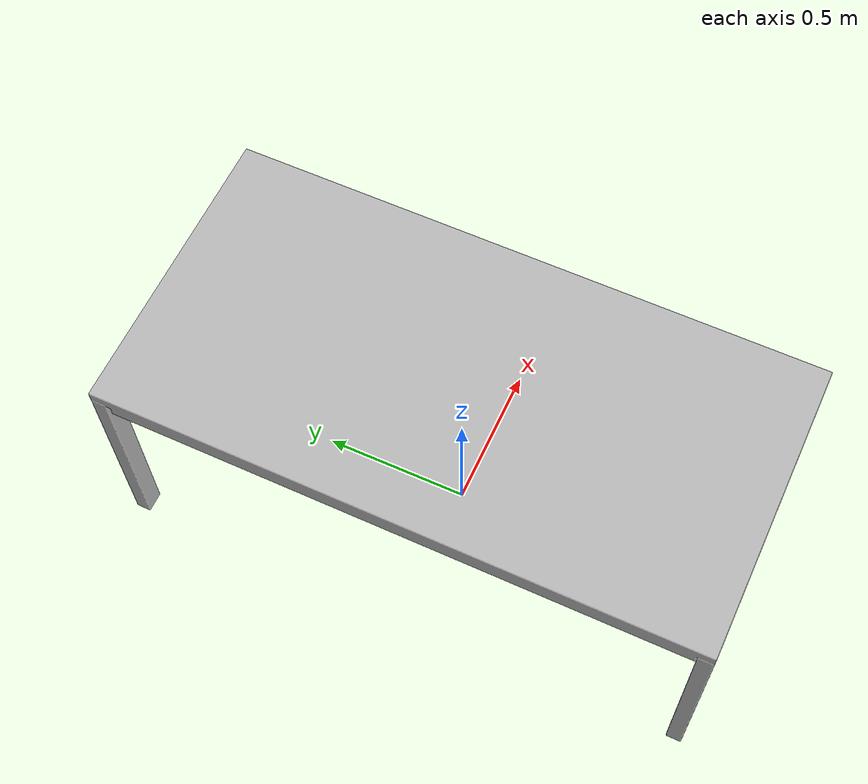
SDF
<?xml version="1.0" ?>
<sdf version="1.6">
  <model name="gcs_table">
    <static>true</static>
    <link name="base_link">
      <collision name="base_collision">
        <geometry>
          <mesh>
            <scale>1 1 1</scale>
            <uri>model://gcs_table/meshes/gcs_table.dae</uri>
          </mesh>
        </geometry>
        <surface>
          <contact>
            <ode/>
          </contact>
          <bounce/>
          <friction>
            <ode>
              <mu>1.0</mu>
              <mu2>1.0</mu2>
            </ode>
          </friction>
        </surface>
      </collision>
      <visual name="base_visual">
        <geometry>
          <mesh>
            <scale>1 1 1</scale>
            <uri>model://gcs_table/meshes/gcs_table.dae</uri>
          </mesh>
        </geometry>
      </visual>
    </link>
  </model>
</sdf>
